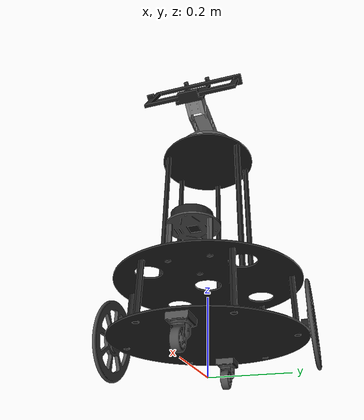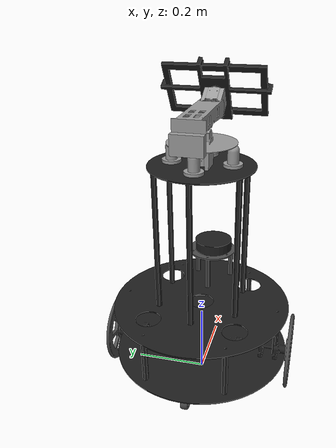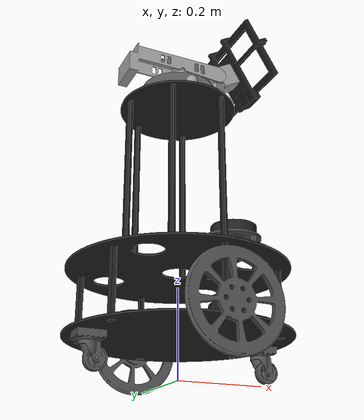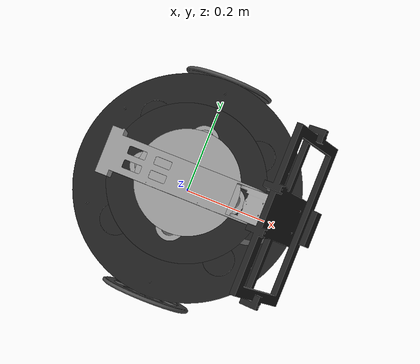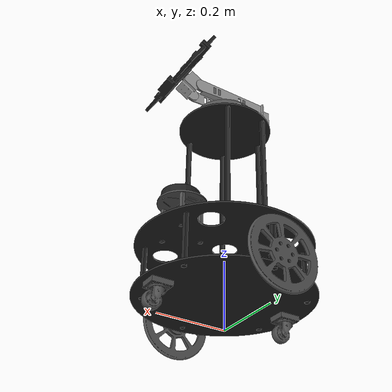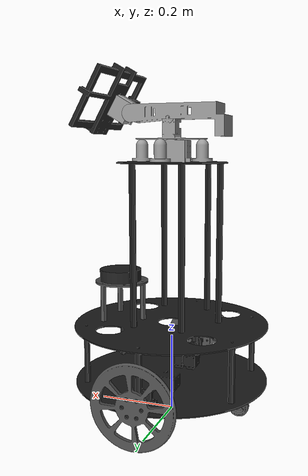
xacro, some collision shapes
<?xml version="1.0"?>

<robot name="pir2_robot" xmlns:xacro="http://www.ros.org/wiki/xacro">

  <xacro:include filename="$(find pir2_description)/urdf/common_properties.urdf.xacro"/>
  <xacro:include filename="$(find pir2_description)/urdf/materials.urdf.xacro"/>

  <xacro:include filename="$(find pir2_description)/urdf/body/bottom.urdf.xacro"/>
  <xacro:include filename="$(find pir2_description)/urdf/body/middle.urdf.xacro"/>
  <xacro:include filename="$(find pir2_description)/urdf/body/lds_plate.urdf.xacro"/>
  <xacro:include filename="$(find pir2_description)/urdf/body/top.urdf.xacro"/>
  <xacro:include filename="$(find pir2_description)/urdf/wheels/wheel.urdf.xacro"/>
  <xacro:include filename="$(find pir2_description)/urdf/lds/lds.urdf.xacro"/>
  <xacro:include filename="$(find pir2_description)/urdf/head/head.urdf.xacro"/>

  <xacro:bottom_frame parent="base_footprint"/>
  <xacro:middle_frame parent="base_link"/>
  <xacro:lds_plate_frame parent="middle_link"/>
  <xacro:top_frame parent="middle_link"/>
  <xacro:lds parent="lds_plate_link" />
  <xacro:wheel parent="base_link" />
  <xacro:head_frame parent="top_link" angle="0.5235987755982988" />
  <xacro:head_frame_transmission />
  <xacro:head_frame_gazebo />
  <!-- =============== Gazebo =============== -->
  <gazebo>
    <plugin name="gazebo_ros_control" filename="libgazebo_ros_control.so">
      <robotNamespace>/pir2</robotNamespace>
      <robotSimType>gazebo_ros_control/DefaultRobotHWSim</robotSimType>
      <legacyModeNS>true</legacyModeNS>
    </plugin>
  </gazebo>

</robot>

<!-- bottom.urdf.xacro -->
<robot name="bottom_frame" xmlns:xacro="http://ros.org/wiki/xacro">
  <xacro:include filename="$(find pir2_description)/urdf/body/bottom.gazebo.xacro"/>

  <xacro:macro name="bottom_frame" params="parent" >
    <link name="base_footprint"/>

    <joint name="base_joint" type="fixed">
      <parent link="base_footprint"/>
      <child link="base_link" />
      <origin xyz="0 0 0.086" rpy="0 0 0"/>
    </joint>

    <link name="base_link">
      <visual>
        <origin xyz="0 0 0.0" rpy="0 0 0"/>
        <geometry>
          <mesh filename="package://pir2_description/meshes/base/bottom_frame.dae" scale="0.001 0.001 0.001"/>
        </geometry>
        <material name="light_black"/>
      </visual>

      <collision>
        <origin xyz="0 0 0" rpy="0 0 0"/>
        <geometry>
          <cylinder length="0.05" radius="0.285"/>
        </geometry>
      </collision>

      <inertial>
        <origin xyz="0 0 0" rpy="0 0 0"/>
        <mass value="20.0"/>
        <inertia ixx="0.24" ixy="0" ixz="0"
                 iyy="0.24" iyz="0"
                 izz="0.48" />
      </inertial>
    </link>

    <joint name="caster_front_joint" type="fixed">
      <parent link="base_link"/>
      <child link="caster_front_link"/>
      <origin xyz="0.2 0 0" rpy="0 0 0"/>
    </joint>

    <link name="caster_front_link">
      <visual>
        <origin xyz="0 0 0" rpy="0 0 0"/>
        <geometry>
          <!--box size="0.07 0.085 0.065"/-->
          <mesh filename="package://pir2_description/meshes/wheels/caster.stl" scale="0.001 0.001 0.001"/>
        </geometry>
        <material name="dark"/>
      </visual>
      <collision>
        <origin xyz="0 0.001 -0.025" rpy="0 0 0"/>
        <geometry>
          <sphere radius="0.056"/>
        </geometry>
      </collision>

      <inertial>
        <origin xyz="0 0 0" />
        <mass value="0.5" />
        <inertia ixx="0.00064" ixy="0.0" ixz="0.0"
                 iyy="0.00064" iyz="0.0"
                 izz="0.00064" />
      </inertial>
    </link>

    <joint name="caster_rear_joint" type="fixed">
      <parent link="base_link"/>
      <child link="caster_rear_link"/>
      <origin xyz="-0.2 0 0" rpy="0 0 0"/>
    </joint>

    <link name="caster_rear_link">
      <visual>
        <origin xyz="0 0 0" rpy="0 0 0"/>
        <geometry>
          <!--box size="0.07 0.085 0.065"/-->
          <mesh filename="package://pir2_description/meshes/wheels/caster.stl" scale="0.001 0.001 0.001"/>
        </geometry>
        <material name="dark"/>
      </visual>
      <collision>
        <origin xyz="0 0.001 -0.025" rpy="0 0 0"/>
        <geometry>
          <sphere radius="0.054"/>
        </geometry>
      </collision>

      <inertial>
        <origin xyz="0 0 0" />
        <mass value="0.5" />
        <inertia ixx="0.00064" ixy="0.0" ixz="0.0"
                 iyy="0.00064" iyz="0.0"
                 izz="0.00064" />
      </inertial>
    </link>
  </xacro:macro>

</robot>

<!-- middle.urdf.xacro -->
<robot name="middle_frame" xmlns:xacro="http://ros.org/wiki/xacro">

  <xacro:macro name="middle_frame" params="parent" >

    <joint name="middle_joint" type="fixed">
      <parent link="${parent}"/>
      <child link="middle_link" />
      <origin xyz="0 0 0.15" rpy="0 0 0"/>
    </joint>

    <link name="middle_link">
      <visual>
        <origin xyz="0 0 0.0" rpy="0 0 0"/>
        <geometry>
          <mesh filename="package://pir2_description/meshes/base/middle_frame.dae" scale="0.001 0.001 0.001"/>
        </geometry>
        <material name="light_black"/>
      </visual>

      <collision>
        <origin xyz="0 0 0" rpy="0 0 0"/>
        <geometry>
          <cylinder length="0.05" radius="0.285"/>
        </geometry>
      </collision>

      <inertial>
        <origin xyz="0 0 0" rpy="0 0 0"/>
        <mass value="0.8"/>
        <inertia ixx="0.008" ixy="0" ixz="0"
                 iyy="0.008" iyz="0"
                 izz="0.016" />
      </inertial>
    </link>

  </xacro:macro>

</robot>

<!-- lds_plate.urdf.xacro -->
<robot name="lds_plate_frame" xmlns:xacro="http://ros.org/wiki/xacro">

  <xacro:macro name="lds_plate_frame" params="parent" >

    <joint name="lds_plate_joint" type="fixed">
      <parent link="${parent}"/>
      <child link="lds_plate_link" />
      <origin xyz="0.14 0 0.10" rpy="0 0 0"/>
    </joint>

    <link name="lds_plate_link">
      <visual>
        <origin xyz="0 0 0.0" rpy="0 0 0"/>
        <geometry>
          <mesh filename="package://pir2_description/meshes/base/lds_frame.stl" scale="0.001 0.001 0.001"/>
        </geometry>
        <material name="dark"/>
      </visual>

      <collision>
        <origin xyz="0 0 0" rpy="0 0 0"/>
        <geometry>
          <cylinder length="0.03" radius="0.08"/>
        </geometry>
      </collision>

    </link>

    <gazebo reference="lds_plate_link">
      <mu1>0.2</mu1>
      <mu2>0.2</mu2>
      <material>Gazebo/DarkGrey</material>
    </gazebo>

  </xacro:macro>

</robot>

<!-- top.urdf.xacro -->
<robot name="top_plate" xmlns:xacro="http://ros.org/wiki/xacro">

  <xacro:macro name="top_frame" params="parent" >

    <joint name="top_joint" type="fixed">
      <parent link="${parent}"/>
      <child link="top_link" />
      <origin xyz="0 0 0.415" rpy="0 0 0"/>
    </joint>

    <link name="top_link">
      <visual>
        <origin xyz="0 0 0.0" rpy="0 0 0"/>
        <geometry>
          <mesh filename="package://pir2_description/meshes/base/top_frame.dae" scale="0.001 0.001 0.001"/>
        </geometry>
        <material name="light_black"/>
      </visual>

      <collision>
        <origin xyz="0 0 0" rpy="0 0 0"/>
        <geometry>
          <cylinder length="0.02" radius="0.14"/>
        </geometry>
      </collision>

      <inertial>
        <origin xyz="0 0 0" rpy="0 0 0"/>
        <mass value="0.5"/>
        <inertia ixx="0.0024" ixy="0" ixz="0"
                 iyy="0.0024" iyz="0"
                 izz="0.0048" />
      </inertial>
    </link>

  </xacro:macro>

</robot>

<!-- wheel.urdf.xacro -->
<robot name="pir2_wheel" xmlns:xacro="http://ros.org/wiki/xacro">
  <xacro:include filename="$(find pir2_description)/urdf/wheels/wheel.gazebo.xacro"/>

  <xacro:macro name="wheel" params="parent" >
    <joint name="wheel_left_joint" type="continuous">
      <parent link="base_link"/>
      <child link="wheel_left_link"/>
      <origin xyz="0.0 0.26 0.023" rpy="-1.57 0 0"/>
      <axis xyz="0 0 1"/>
    </joint>

    <link name="wheel_left_link">
      <visual>
        <origin xyz="0 0 0" rpy="0 0 0"/>
        <geometry>
          <mesh filename="package://pir2_description/meshes/wheels/left_wheel2.stl" scale="0.001 0.001 0.001"/>
        </geometry>
        <material name="dark"/>
      </visual>

      <collision>
        <origin xyz="0 0 0" rpy="0 0 0"/>
        <geometry>
          <cylinder length="0.018" radius="0.108"/>
        </geometry>
      </collision>

      <inertial>
        <origin xyz="0 0 0" />
        <mass value="0.22" />
        <inertia ixx="0.0011" ixy="0" ixz="0"
                 iyy="0.0011" iyz="0"
                 izz="0.0017" />
        </inertial>

    </link>

    <joint name="wheel_right_joint" type="continuous">
      <parent link="base_link"/>
      <child link="wheel_right_link"/>
      <origin xyz="0.0 -0.26 0.023" rpy="-1.57 0 0"/>
      <axis xyz="0 0 1"/>
    </joint>

    <link name="wheel_right_link">
      <visual>
        <origin xyz="0 0 0" rpy="0 0 0"/>
        <geometry>
          <mesh filename="package://pir2_description/meshes/wheels/right_wheel2.stl" scale="0.001 0.001 0.001"/>
        </geometry>
        <material name="dark"/>
      </visual>

      <collision>
        <origin xyz="0 0 0" rpy="0 0 0"/>
        <geometry>
          <cylinder length="0.018" radius="0.108"/>
        </geometry>
      </collision>

      <inertial>
        <origin xyz="0 0 0" />
        <mass value="0.22" />
        <inertia ixx="0.0011" ixy="0" ixz="0"
                 iyy="0.0011" iyz="0"
                 izz="0.0017" />
        </inertial>
    </link>
  </xacro:macro>

</robot>

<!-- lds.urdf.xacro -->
<robot name="hlds_support" xmlns:xacro="http://ros.org/wiki/xacro">

  <xacro:include filename="$(find pir2_description)/urdf/lds/lds.gazebo.xacro"/>

  <xacro:macro name="lds" params="parent" >

    <joint name="scan_joint" type="fixed">
      <parent link="${parent}"/>
      <child link="base_scan"/>
      <origin xyz="-0.01 0 0.023" rpy="0 0 0"/>
    </joint>

    <link name="base_scan">
      <visual>
        <origin xyz="0 0 0" rpy="0 0 0"/>
        <geometry>
          <mesh filename="package://pir2_description/meshes/sensors/lds.stl" scale="0.001 0.001 0.001"/>
        </geometry>
        <material name="dark"/>
      </visual>

      <collision>
        <origin xyz="0.015 0 -0.0065" rpy="0 0 0"/>
        <geometry>
          <cylinder length="0.0315" radius="0.055"/>
        </geometry>
      </collision>

    </link>

  </xacro:macro>

</robot>

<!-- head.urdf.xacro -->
<robot name="head_base_frame" xmlns:xacro="http://www.ros.org/wiki/xacro">

  <xacro:include filename="$(find pir2_description)/urdf/head/head.transmission.xacro"/>
  <xacro:include filename="$(find pir2_description)/urdf/head/head.gazebo.xacro"/>

  <xacro:macro name="head_frame" params="parent angle">

    <xacro:property name="yaw_angle" value="${-angle}"/>

    <joint name="pan_support_joint" type="fixed">
      <origin xyz="0 0 0.0015 " rpy="0 0 0" />
      <parent link="${parent}"/>
      <child link="pan_support_link"/>
    </joint>

    <link name="pan_support_link" >
      <visual>
        <origin xyz="0 0 0" rpy="0 0 0" />
        <geometry>
          <mesh filename="package://pir2_description/meshes/head/pan_support.stl" scale="0.001 0.001 0.001"/>
        </geometry>
        <material name="grey"/>
      </visual>
    </link>

    <joint name="head_base_joint" type="fixed">
      <origin xyz="0 0 0.0316 " rpy="0 0 0" />
      <parent link="${parent}"/>
      <child link="head_base_link"/>
    </joint>

    <link name="head_base_link" >
      <visual>
        <origin xyz="0 0 0" rpy="0 0 0" />
        <geometry>
          <!--box size="0.07 0.085 0.065" /-->
          <mesh filename="package://pir2_description/meshes/head/pan_frame.dae" scale="0.001 0.001 0.001"/>
        </geometry>
        <material name="grey"/>
      </visual>
      <collision>
        <origin xyz="-0.015 0 0" rpy="0 0 0"/>
        <geometry>
           <box size="0.06 0.06 0.05"/>
        </geometry>
      </collision>
     <inertial>
       <origin xyz="-0.015 0 0" rpy="0 0 0"/>
       <mass value="0.02"/>
       <inertia
  	    ixx="0.0001" ixy="0.0" ixz="0.0"
  	    iyy="0.00012" iyz="0.0"
  	    izz="0.0001"/>
     </inertial>
    </link>

    <joint name="pan_joint" type="revolute">
      <parent link="head_base_link"/>
      <child link="pan_link"/>
      <origin xyz="0 0 0.0245" rpy="0 0 0" />
      <axis xyz="0 0 1" />
      <limit lower="-1.3" upper="1.3" effort="10" velocity="1"/>
      <dynamics damping="0.7"/>
    </joint>

    <link name="pan_link" >
      <visual>
        <origin xyz="0 0 0.0515" rpy="0 0 0" />
        <geometry>
          <!--box size="0.07 0.085 0.065" /-->
          <mesh filename="package://pir2_description/meshes/head/tilt_frame.dae" scale="0.001 0.001 0.001"/>
        </geometry>
        <material name="grey"/>
      </visual>
      <collision>
        <origin xyz="0 0 0.018" rpy="0 0 0"/>
        <geometry>
          <box size="0.04 0.04 0.03"/>
        </geometry>
      </collision>
      <inertial>
        <origin xyz="0 0 0.018" rpy="0 0 0"/>
        <mass value="0.03"/>
        <inertia
          ixx="0.0000625" ixy="0.0" ixz="0.0"
          iyy="0.00008" iyz="0.0"
          izz="0.0000625"/>
      </inertial>
    </link>

    <joint name="tilt_joint" type="revolute">
      <parent link="pan_link"/>
      <child link="tilt_link"/>
      <origin xyz="0 0.0245 0.0515" rpy="-1.57 -1.57 0" />
      <axis xyz="0 0 1" />
      <limit lower="-0.3490658503988659" upper="0.17453292519943295" effort="10" velocity="1"/>
      <dynamics damping="0.7"/>
    </joint>

    <link name="tilt_link" >
      <visual>
        <origin xyz="0 0 -0.0245" rpy="0 0 0" />
        <geometry>
          <mesh filename="package://pir2_description/meshes/head/yaw_plate.dae" scale="0.001 0.001 0.001"/>
        </geometry>
        <material name="grey"/>
      </visual>
      <collision>
        <origin xyz="0.035 0 -0.025" rpy="0 0 0"/>
        <geometry>
          <box size="0.004 0.18 0.06"/>
        </geometry>
      </collision>
      <inertial>
        <origin xyz="0.035 0 -0.025" rpy="0 0 0"/>
        <mass value="0.04"/>
        <inertia
          ixx="0.032" ixy="0.0" ixz="0.0"
          iyy="0.0010" iyz="0.0"
          izz="0.0012"/>
      </inertial>
    </link>

    <joint name="yaw_plate_to_dxl_joint" type="fixed">
      <origin xyz="0.0233 0.1 -0.0245" rpy="1.57 0 ${yaw_angle+1.57}" />
      <parent link="tilt_link"/>
      <child link="yaw_dxl_link"/>
    </joint>

    <link name="yaw_dxl_link" >
      <visual>
        <origin xyz="0.027 0 0" rpy="0 0 0" />
        <geometry>
          <mesh filename="package://pir2_description/meshes/head/yaw_frame.dae" scale="0.001 0.001 0.001"/>
        </geometry>
        <material name="grey"/>
      </visual>
      <collision>
        <origin xyz="-0.013 0 -0.015" rpy="0 0 0"/>
        <geometry>
          <box size="0.035 0.053 0.054"/>
        </geometry>
      </collision>
      <inertial>
        <origin xyz="-0.013 0 -0.015" rpy="0 0 0"/>
        <mass value="0.02"/>
        <inertia
         ixx="0.0028" ixy="0.0" ixz="0.0"
         iyy="0.0012" iyz="0.0"
         izz="0.0012"/>
      </inertial>
    </link>

    <joint name="yaw_joint" type="revolute">
      <parent link="yaw_dxl_link"/>
      <child link="yaw_link"/>
      <origin xyz="0.0515 0 0" rpy="0 -1.57 3.14" />
      <axis xyz="0 0 1" />
      <limit lower="-1.3" upper="1.3" effort="10" velocity="1"/>
      <dynamics damping="0.7"/>
    </joint>

    <link name="yaw_link" >
      <visual>
        <origin xyz="0 0 0" rpy="0 0 0" />
        <geometry>
          <!--box size="0.07 0.085 0.065" /-->
          <mesh filename="package://pir2_description/meshes/head/display_frame.stl" scale="0.001 0.001 0.001"/>
        </geometry>
        <material name="dark"/>
      </visual>
      <collision>
        <origin xyz="0 0 0" rpy="0 0 0"/>
        <geometry>
          <box size="0.16 0.26 0.004"/>
        </geometry>
      </collision>
      <inertial>
        <origin xyz="0 0 0" rpy="0 0 0"/>
        <mass value="0.01"/>
        <inertia
          ixx="0.00057" ixy="0.0" ixz="0.0"
          iyy="0.00077" iyz="0.0"
          izz="0.025"/>
       </inertial>
    </link>

  </xacro:macro>

</robot>
